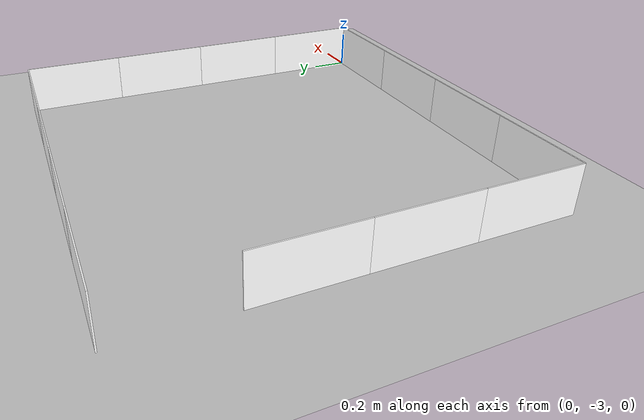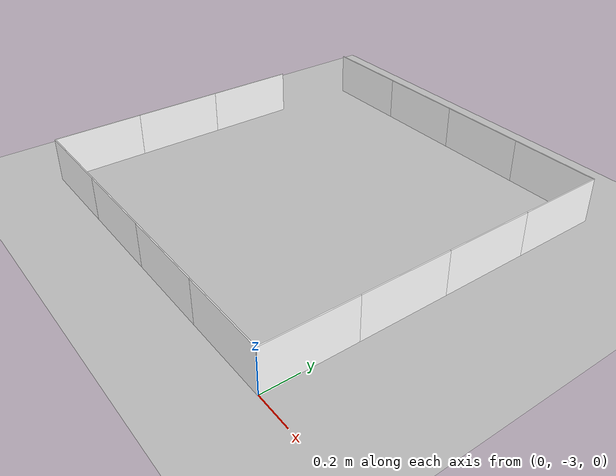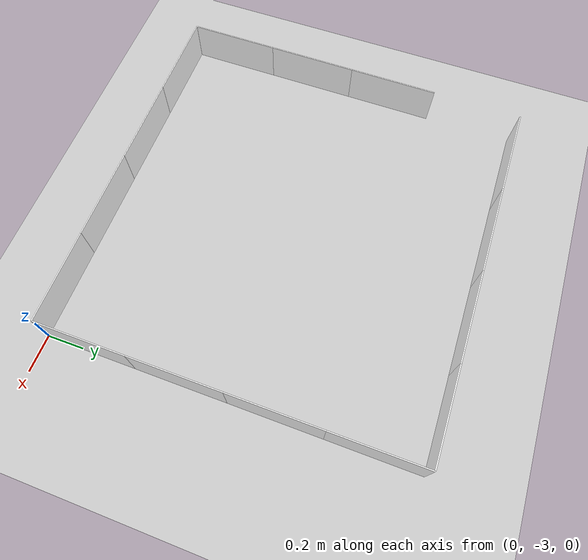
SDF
<?xml version="1.0"?>
<sdf version="1.6">
  <world name="default">

    <include>
      <uri>model://ground_plane</uri>
    </include>

    <include>
      <uri>model://sun</uri>
    </include>

    <scene>
      <shadows>false</shadows>
    </scene>

    <gui fullscreen='0'>
      <camera name='user_camera'>
        <pose>0.450868 -7.38837 10.7817 0 1.0338 1.5656</pose>
        <view_controller>orbit</view_controller>
        <projection_type>perspective</projection_type>
      </camera>
    </gui>

    <physics type="ode">
      <real_time_update_rate>1000.0</real_time_update_rate>
      <max_step_size>0.001</max_step_size>
      <real_time_factor>1</real_time_factor>
      <ode>
        <solver>
          <type>quick</type>
          <iters>150</iters>
          <precon_iters>0</precon_iters>
          <sor>1.400000</sor>
          <use_dynamic_moi_rescaling>1</use_dynamic_moi_rescaling>
        </solver>
        <constraints>
          <cfm>0.00001</cfm>
          <erp>0.2</erp>
          <contact_max_correcting_vel>2000.000000</contact_max_correcting_vel>
          <contact_surface_layer>0.01000</contact_surface_layer>
        </constraints>
      </ode>
    </physics>

     <include>
      <uri>model://maze_model</uri>
    </include>

  </world>
</sdf>

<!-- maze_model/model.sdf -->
<sdf version="1.6">
  <!--Generated maze model-->
  <model name="maze">
    <static>1</static>
    <link name="wall_0">
      <pose>0.0 -1.25 0.125 0 0 0</pose>
      <collision name="wall_0_collision">
        <geometry>
          <box>
            <size>0.006 0.5 0.25</size>
          </box>
        </geometry>
      </collision>
      <visual name="wall_0_visual">
        <geometry>
          <box>
            <size>0.006 0.5 0.25</size>
          </box>
        </geometry>
        <material>
          <ambient>1 1 1</ambient>
          <diffuse>1 1 1</diffuse>
        </material>
        <meta>
          <meta>0</meta>
        </meta>
      </visual>
    </link>
    <link name="wall_1">
      <pose>0.0 -1.75 0.125 0 0 0</pose>
      <collision name="wall_1_collision">
        <geometry>
          <box>
            <size>0.006 0.5 0.25</size>
          </box>
        </geometry>
      </collision>
      <visual name="wall_1_visual">
        <geometry>
          <box>
            <size>0.006 0.5 0.25</size>
          </box>
        </geometry>
        <material>
          <ambient>1 1 1</ambient>
          <diffuse>1 1 1</diffuse>
        </material>
        <meta>
          <meta>0</meta>
        </meta>
      </visual>
    </link>
    <link name="wall_2">
      <pose>0.0 -2.25 0.125 0 0 0</pose>
      <collision name="wall_2_collision">
        <geometry>
          <box>
            <size>0.006 0.5 0.25</size>
          </box>
        </geometry>
      </collision>
      <visual name="wall_2_visual">
        <geometry>
          <box>
            <size>0.006 0.5 0.25</size>
          </box>
        </geometry>
        <material>
          <ambient>1 1 1</ambient>
          <diffuse>1 1 1</diffuse>
        </material>
        <meta>
          <meta>0</meta>
        </meta>
      </visual>
    </link>
    <link name="wall_3">
      <pose>0.0 -2.75 0.125 0 0 0</pose>
      <collision name="wall_3_collision">
        <geometry>
          <box>
            <size>0.006 0.5 0.25</size>
          </box>
        </geometry>
      </collision>
      <visual name="wall_3_visual">
        <geometry>
          <box>
            <size>0.006 0.5 0.25</size>
          </box>
        </geometry>
        <material>
          <ambient>1 1 1</ambient>
          <diffuse>1 1 1</diffuse>
        </material>
        <meta>
          <meta>0</meta>
        </meta>
      </visual>
    </link>
    <link name="wall_4">
      <pose>-2.0 -1.75 0.125 0 0 0</pose>
      <collision name="wall_4_collision">
        <geometry>
          <box>
            <size>0.006 0.5 0.25</size>
          </box>
        </geometry>
      </collision>
      <visual name="wall_4_visual">
        <geometry>
          <box>
            <size>0.006 0.5 0.25</size>
          </box>
        </geometry>
        <material>
          <ambient>1 1 1</ambient>
          <diffuse>1 1 1</diffuse>
        </material>
        <meta>
          <meta>0</meta>
        </meta>
      </visual>
    </link>
    <link name="wall_5">
      <pose>-2.0 -2.25 0.125 0 0 0</pose>
      <collision name="wall_5_collision">
        <geometry>
          <box>
            <size>0.006 0.5 0.25</size>
          </box>
        </geometry>
      </collision>
      <visual name="wall_5_visual">
        <geometry>
          <box>
            <size>0.006 0.5 0.25</size>
          </box>
        </geometry>
        <material>
          <ambient>1 1 1</ambient>
          <diffuse>1 1 1</diffuse>
        </material>
        <meta>
          <meta>0</meta>
        </meta>
      </visual>
    </link>
    <link name="wall_6">
      <pose>-2.0 -2.75 0.125 0 0 0</pose>
      <collision name="wall_6_collision">
        <geometry>
          <box>
            <size>0.006 0.5 0.25</size>
          </box>
        </geometry>
      </collision>
      <visual name="wall_6_visual">
        <geometry>
          <box>
            <size>0.006 0.5 0.25</size>
          </box>
        </geometry>
        <material>
          <ambient>1 1 1</ambient>
          <diffuse>1 1 1</diffuse>
        </material>
        <meta>
          <meta>0</meta>
        </meta>
      </visual>
    </link>
    <link name="wall_7">
      <pose>-0.25 -1.0 0.125 0 0 0</pose>
      <collision name="wall_7_collision">
        <geometry>
          <box>
            <size>0.5 0.006 0.25</size>
          </box>
        </geometry>
      </collision>
      <visual name="wall_7_visual">
        <geometry>
          <box>
            <size>0.5 0.006 0.25</size>
          </box>
        </geometry>
        <material>
          <ambient>1 1 1</ambient>
          <diffuse>1 1 1</diffuse>
        </material>
        <meta>
          <meta>0</meta>
        </meta>
      </visual>
    </link>
    <link name="wall_8">
      <pose>-0.25 -3.0 0.125 0 0 0</pose>
      <collision name="wall_8_collision">
        <geometry>
          <box>
            <size>0.5 0.006 0.25</size>
          </box>
        </geometry>
      </collision>
      <visual name="wall_8_visual">
        <geometry>
          <box>
            <size>0.5 0.006 0.25</size>
          </box>
        </geometry>
        <material>
          <ambient>1 1 1</ambient>
          <diffuse>1 1 1</diffuse>
        </material>
        <meta>
          <meta>0</meta>
        </meta>
      </visual>
    </link>
    <link name="wall_9">
      <pose>-0.75 -1.0 0.125 0 0 0</pose>
      <collision name="wall_9_collision">
        <geometry>
          <box>
            <size>0.5 0.006 0.25</size>
          </box>
        </geometry>
      </collision>
      <visual name="wall_9_visual">
        <geometry>
          <box>
            <size>0.5 0.006 0.25</size>
          </box>
        </geometry>
        <material>
          <ambient>1 1 1</ambient>
          <diffuse>1 1 1</diffuse>
        </material>
        <meta>
          <meta>0</meta>
        </meta>
      </visual>
    </link>
    <link name="wall_10">
      <pose>-0.75 -3.0 0.125 0 0 0</pose>
      <collision name="wall_10_collision">
        <geometry>
          <box>
            <size>0.5 0.006 0.25</size>
          </box>
        </geometry>
      </collision>
      <visual name="wall_10_visual">
        <geometry>
          <box>
            <size>0.5 0.006 0.25</size>
          </box>
        </geometry>
        <material>
          <ambient>1 1 1</ambient>
          <diffuse>1 1 1</diffuse>
        </material>
        <meta>
          <meta>0</meta>
        </meta>
      </visual>
    </link>
    <link name="wall_11">
      <pose>-1.25 -1.0 0.125 0 0 0</pose>
      <collision name="wall_11_collision">
        <geometry>
          <box>
            <size>0.5 0.006 0.25</size>
          </box>
        </geometry>
      </collision>
      <visual name="wall_11_visual">
        <geometry>
          <box>
            <size>0.5 0.006 0.25</size>
          </box>
        </geometry>
        <material>
          <ambient>1 1 1</ambient>
          <diffuse>1 1 1</diffuse>
        </material>
        <meta>
          <meta>0</meta>
        </meta>
      </visual>
    </link>
    <link name="wall_12">
      <pose>-1.25 -3.0 0.125 0 0 0</pose>
      <collision name="wall_12_collision">
        <geometry>
          <box>
            <size>0.5 0.006 0.25</size>
          </box>
        </geometry>
      </collision>
      <visual name="wall_12_visual">
        <geometry>
          <box>
            <size>0.5 0.006 0.25</size>
          </box>
        </geometry>
        <material>
          <ambient>1 1 1</ambient>
          <diffuse>1 1 1</diffuse>
        </material>
        <meta>
          <meta>0</meta>
        </meta>
      </visual>
    </link>
    <link name="wall_13">
      <pose>-1.75 -1.0 0.125 0 0 0</pose>
      <collision name="wall_13_collision">
        <geometry>
          <box>
            <size>0.5 0.006 0.25</size>
          </box>
        </geometry>
      </collision>
      <visual name="wall_13_visual">
        <geometry>
          <box>
            <size>0.5 0.006 0.25</size>
          </box>
        </geometry>
        <material>
          <ambient>1 1 1</ambient>
          <diffuse>1 1 1</diffuse>
        </material>
        <meta>
          <meta>0</meta>
        </meta>
      </visual>
    </link>
    <link name="wall_14">
      <pose>-1.75 -3.0 0.125 0 0 0</pose>
      <collision name="wall_14_collision">
        <geometry>
          <box>
            <size>0.5 0.006 0.25</size>
          </box>
        </geometry>
      </collision>
      <visual name="wall_14_visual">
        <geometry>
          <box>
            <size>0.5 0.006 0.25</size>
          </box>
        </geometry>
        <material>
          <ambient>1 1 1</ambient>
          <diffuse>1 1 1</diffuse>
        </material>
        <meta>
          <meta>0</meta>
        </meta>
      </visual>
    </link>
  </model>
</sdf>
